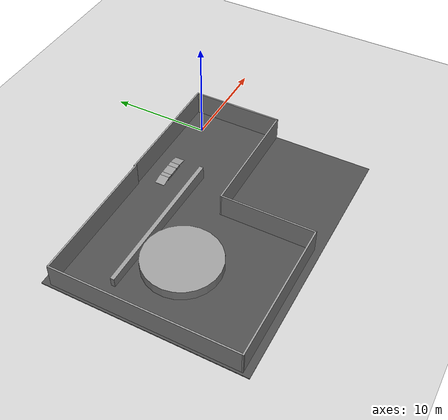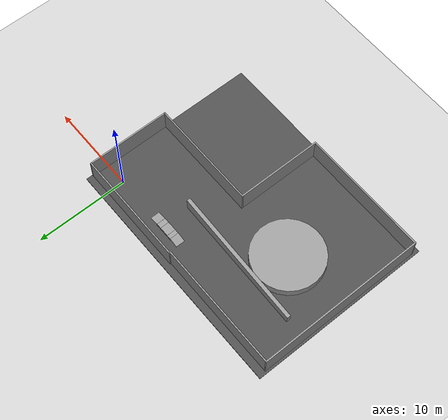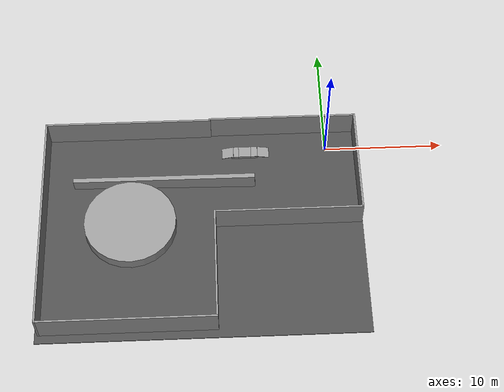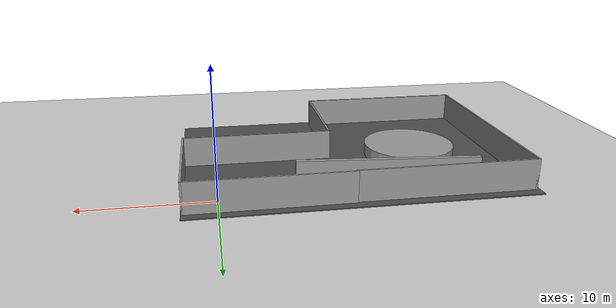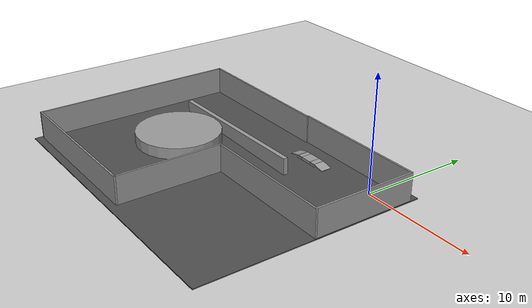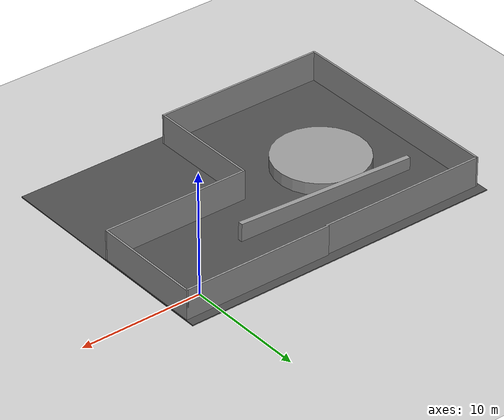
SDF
<sdf version="1.6">
 <world name="default">
  <light name="sun" type="directional">
   <pose>0 0 10 0 -0 0</pose>
   <diffuse>0.8 0.8 0.8 1</diffuse>
   <specular>0.2 0.2 0.2 1</specular>
   <attenuation>
    <range>1000</range>
    <constant>0.9</constant>
    <linear>0.01</linear>
    <quadratic>0.001</quadratic>
   </attenuation>
   <direction>-0.5 0.1 -0.9</direction>
  </light>
  <model name="ground_plane">
   <static>1</static>
   <link name="link">
    <collision name="collision">
     <geometry><plane><normal>0 0 1</normal><size>100 100</size></plane></geometry>
     <surface>
      <contact><collide_bitmask>65535</collide_bitmask></contact>
      <friction><ode><mu>100</mu><mu2>50</mu2></ode></friction>
     </surface>
    </collision>
    <visual name="visual">
     <cast_shadows>0</cast_shadows>
     <geometry><plane><normal>0 0 1</normal><size>100 100</size></plane></geometry>
     <material>
      <script><uri>file://media/materials/scripts/gazebo.material</uri><name>Gazebo/Grey</name></script>
     </material>
    </visual>
   </link>
  </model>
  <gravity>0 0 -9.8</gravity>
  <magnetic_field>6e-06 2.3e-05 -4.2e-05</magnetic_field>
  <atmosphere type="adiabatic"/>
  <physics name="default_physics" default="0" type="ode">
   <max_step_size>0.001</max_step_size>
   <real_time_factor>1</real_time_factor>
   <real_time_update_rate>1000</real_time_update_rate>
  </physics>
  <scene><ambient>0.4 0.4 0.4 1</ambient><background>0.7 0.7 0.7 1</background><shadows>1</shadows></scene>
  <audio><device>default</device></audio>
  <spherical_coordinates>
   <surface_model>EARTH_WGS84</surface_model>
   <latitude_deg>0</latitude_deg>
   <longitude_deg>0</longitude_deg>
   <elevation>0</elevation>
   <heading_deg>0</heading_deg>
  </spherical_coordinates>
  <model name="naoki_test">
   <pose>-10.6171 -7.42173 0 0 -0 0</pose>
   <link name="Wall_10">
    <collision name="Wall_10_Collision">
     <geometry><box><size>9.5 0.15 2.5</size></box></geometry>
     <pose>0 0 1.25 0 -0 0</pose>
    </collision>
    <visual name="Wall_10_Visual">
     <pose>0 0 1.25 0 -0 0</pose>
     <geometry><box><size>9.5 0.15 2.5</size></box></geometry>
     <material>
      <script><uri>file://media/materials/scripts/gazebo.material</uri><name>Gazebo/Grey</name></script>
      <ambient>1 1 1 1</ambient>
     </material>
     <meta><layer>0</layer></meta>
    </visual>
    <pose>1 -4.55 0 0 -0 -1.5708</pose>
   </link>
   <link name="Wall_11">
    <collision name="Wall_11_Collision">
     <geometry><box><size>14.25 0.15 2.5</size></box></geometry>
     <pose>0 0 1.25 0 -0 0</pose>
    </collision>
    <visual name="Wall_11_Visual">
     <pose>0 0 1.25 0 -0 0</pose>
     <geometry><box><size>14.25 0.15 2.5</size></box></geometry>
     <material>
      <script><uri>file://media/materials/scripts/gazebo.material</uri><name>Gazebo/Grey</name></script>
      <ambient>1 1 1 1</ambient>
     </material>
     <meta><layer>0</layer></meta>
    </visual>
    <pose>-6.05 -9.225 0 0 -0 3.14159</pose>
   </link>
   <link name="Wall_12">
    <collision name="Wall_12_Collision">
     <geometry><box><size>18.5 0.15 2.5</size></box></geometry>
     <pose>0 0 1.25 0 -0 0</pose>
    </collision>
    <visual name="Wall_12_Visual">
     <pose>0 0 1.25 0 -0 0</pose>
     <geometry><box><size>18.5 0.15 2.5</size></box></geometry>
     <material>
      <script><uri>file://media/materials/scripts/gazebo.material</uri><name>Gazebo/Grey</name></script>
      <ambient>1 1 1 1</ambient>
     </material>
     <meta><layer>0</layer></meta>
    </visual>
    <pose>-13.1 -0.05 0 0 -0 1.5708</pose>
   </link>
   <link name="Wall_13">
    <collision name="Wall_13_Collision">
     <geometry><box><size>14 0.15 2.5</size></box></geometry>
     <pose>0 0 1.25 0 -0 0</pose>
    </collision>
    <visual name="Wall_13_Visual">
     <pose>0 0 1.25 0 -0 0</pose>
     <geometry><box><size>14 0.15 2.5</size></box></geometry>
     <material>
      <script><uri>file://media/materials/scripts/gazebo.material</uri><name>Gazebo/Grey</name></script>
      <ambient>1 1 1 1</ambient>
     </material>
     <meta><layer>0</layer></meta>
    </visual>
    <pose>-6.175 9.125 0 0 -0 0</pose>
   </link>
   <link name="Wall_7">
    <collision name="Wall_7_Collision">
     <geometry><box><size>12.5 0.15 2.5</size></box></geometry>
     <pose>0 0 1.25 0 -0 0</pose>
    </collision>
    <visual name="Wall_7_Visual">
     <pose>0 0 1.25 0 -0 0</pose>
     <geometry><box><size>12.5 0.15 2.5</size></box></geometry>
     <material>
      <script><uri>file://media/materials/scripts/gazebo.material</uri><name>Gazebo/Grey</name></script>
      <ambient>1 1 1 1</ambient>
     </material>
     <meta><layer>0</layer></meta>
    </visual>
    <pose>6.925 9.225 0 0 -0 0</pose>
   </link>
   <link name="Wall_8">
    <collision name="Wall_8_Collision">
     <geometry><box><size>9.25 0.15 2.5</size></box></geometry>
     <pose>0 0 1.25 0 -0 0</pose>
    </collision>
    <visual name="Wall_8_Visual">
     <pose>0 0 1.25 0 -0 0</pose>
     <geometry><box><size>9.25 0.15 2.5</size></box></geometry>
     <material>
      <script><uri>file://media/materials/scripts/gazebo.material</uri><name>Gazebo/Grey</name></script>
      <ambient>1 1 1 1</ambient>
     </material>
     <meta><layer>0</layer></meta>
    </visual>
    <pose>13.1 4.675 0 0 -0 -1.5708</pose>
   </link>
   <link name="Wall_9">
    <collision name="Wall_9_Collision">
     <geometry><box><size>12.25 0.15 2.5</size></box></geometry>
     <pose>0 0 1.25 0 -0 0</pose>
    </collision>
    <visual name="Wall_9_Visual">
     <pose>0 0 1.25 0 -0 0</pose>
     <geometry><box><size>12.25 0.15 2.5</size></box></geometry>
     <material>
      <script><uri>file://media/materials/scripts/gazebo.material</uri><name>Gazebo/Grey</name></script>
      <ambient>1 1 1 1</ambient>
     </material>
     <meta><layer>0</layer></meta>
    </visual>
    <pose>7.05 0.125 0 0 -0 3.14159</pose>
   </link>
   <static>1</static>
  </model>
  <model name="unit_box">
   <pose>-7.7768 -0.198615 0.146125 -1e-06 -1e-06 0.00247</pose>
   <link name="link">
    <inertial>
     <mass>1</mass>
     <inertia>
      <ixx>0.166667</ixx>
      <ixy>0</ixy>
      <ixz>0</ixz>
      <iyy>0.166667</iyy>
      <iyz>0</iyz>
      <izz>0.166667</izz>
     </inertia>
    </inertial>
    <collision name="collision"><geometry><box><size>0.599521 1 0.19225</size></box></geometry></collision>
    <visual name="visual">
     <geometry><box><size>0.599521 1 0.19225</size></box></geometry>
     <material>
      <script><name>Gazebo/Grey</name><uri>file://media/materials/scripts/gazebo.material</uri></script>
     </material>
    </visual>
   </link>
  </model>
  <model name="unit_box_1">
   <pose>-8.41401 -0.197517 0.179476 -3e-05 -0.230082 0.002485</pose>
   <link name="link">
    <inertial>
     <mass>1</mass>
     <inertia>
      <ixx>0.166667</ixx>
      <ixy>0</ixy>
      <ixz>0</ixz>
      <iyy>0.166667</iyy>
      <iyz>0</iyz>
      <izz>0.166667</izz>
     </inertia>
    </inertial>
    <collision name="collision"><geometry><box><size>1 1 0.0317003</size></box></geometry></collision>
    <visual name="visual">
     <geometry><box><size>1 1 0.0317003</size></box></geometry>
     <material>
      <script><name>Gazebo/Grey</name><uri>file://media/materials/scripts/gazebo.material</uri></script>
     </material>
    </visual>
   </link>
  </model>
  <model name="unit_box_clone">
   <pose>-6.95613 -0.196658 0.171907 -3.2e-05 2.3e-05 0.002466</pose>
   <link name="link">
    <inertial>
     <mass>1</mass>
     <inertia>
      <ixx>0.166667</ixx>
      <ixy>0</ixy>
      <ixz>0</ixz>
      <iyy>0.166667</iyy>
      <iyz>0</iyz>
      <izz>0.166667</izz>
     </inertia>
    </inertial>
    <collision name="collision"><geometry><box><size>1.04182 1 0.2439</size></box></geometry></collision>
    <visual name="visual">
     <geometry><box><size>1.04182 1 0.2439</size></box></geometry>
     <material>
      <script><name>Gazebo/Grey</name><uri>file://media/materials/scripts/gazebo.material</uri></script>
     </material>
    </visual>
   </link>
  </model>
  <model name="unit_box_clone_0">
   <pose>-6.13547 -0.191618 0.14612 0 -1.8e-05 0.002452</pose>
   <link name="link">
    <inertial>
     <mass>1</mass>
     <inertia>
      <ixx>0.166667</ixx>
      <ixy>0</ixy>
      <ixz>0</ixz>
      <iyy>0.166667</iyy>
      <iyz>0</iyz>
      <izz>0.166667</izz>
     </inertia>
    </inertial>
    <collision name="collision"><geometry><box><size>0.599521 1 0.19225</size></box></geometry></collision>
    <visual name="visual">
     <geometry><box><size>0.599521 1 0.19225</size></box></geometry>
     <material>
      <script><name>Gazebo/Grey</name><uri>file://media/materials/scripts/gazebo.material</uri></script>
     </material>
    </visual>
   </link>
  </model>
  <model name="unit_box_1_clone">
   <pose>-5.38842 -0.187082 0.166343 7e-06 0.203034 0.002465</pose>
   <link name="link">
    <inertial>
     <mass>1</mass>
     <inertia>
      <ixx>0.166667</ixx>
      <ixy>0</ixy>
      <ixz>0</ixz>
      <iyy>0.166667</iyy>
      <iyz>0</iyz>
      <izz>0.166667</izz>
     </inertia>
    </inertial>
    <collision name="collision"><geometry><box><size>1 1 0.0317</size></box></geometry></collision>
    <visual name="visual">
     <geometry><box><size>1 1 0.0317</size></box></geometry>
     <material>
      <script><name>Gazebo/Grey</name><uri>file://media/materials/scripts/gazebo.material</uri></script>
     </material>
    </visual>
   </link>
  </model>
  <model name="unit_box_1_clone_0">
   <pose>-6.15829 -0.192103 0.2657 2e-06 -1.5e-05 0.00246</pose>
   <link name="link">
    <inertial>
     <mass>1</mass>
     <inertia>
      <ixx>0.166667</ixx>
      <ixy>0</ixy>
      <ixz>0</ixz>
      <iyy>0.166667</iyy>
      <iyz>0</iyz>
      <izz>0.166667</izz>
     </inertia>
    </inertial>
    <collision name="collision"><geometry><box><size>0.553899 1 0.0469112</size></box></geometry></collision>
    <visual name="visual">
     <geometry><box><size>0.553899 1 0.0469112</size></box></geometry>
     <material>
      <script><name>Gazebo/Grey</name><uri>file://media/materials/scripts/gazebo.material</uri></script>
     </material>
    </visual>
   </link>
  </model>
  <model name="unit_box_1_clone_0_clone">
   <pose>-7.70032 -0.194154 0.265706 0 -0 0.002474</pose>
   <link name="link">
    <inertial>
     <mass>1</mass>
     <inertia>
      <ixx>0.166667</ixx>
      <ixy>0</ixy>
      <ixz>0</ixz>
      <iyy>0.166667</iyy>
      <iyz>0</iyz>
      <izz>0.166667</izz>
     </inertia>
    </inertial>
    <collision name="collision"><geometry><box><size>0.446506 1 0.046911</size></box></geometry></collision>
    <visual name="visual">
     <geometry><box><size>0.446506 1 0.046911</size></box></geometry>
     <material>
      <script><name>Gazebo/Grey</name><uri>file://media/materials/scripts/gazebo.material</uri></script>
     </material>
    </visual>
   </link>
  </model>
  <model name="asphalt_plane">
   <static>1</static>
   <link name="link">
    <collision name="collision"><geometry><box><size>26.6366 20 0.1</size></box></geometry></collision>
    <visual name="visual">
     <cast_shadows>0</cast_shadows>
     <geometry><box><size>26.6366 20 0.1</size></box></geometry>
     <material>
      <script>
       <uri>model://asphalt_plane/materials/scripts</uri>
       <uri>model://asphalt_plane/materials/textures</uri>
       <name>vrc/asphalt</name>
      </script>
     </material>
    </visual>
   </link>
   <pose>-10.7069 -7.40195 0 0 -0 0</pose>
  </model>
  <model name="unit_cylinder">
   <pose>-16.6132 -7.15069 0.550101 -2.1e-05 -1e-05 -2.56088</pose>
   <link name="link">
    <inertial>
     <mass>1</mass>
     <inertia><ixx>0.145833</ixx><ixy>0</ixy><ixz>0</ixz><iyy>0.145833</iyy><iyz>0</iyz><izz>0.125</izz></inertia>
    </inertial>
    <collision name="collision">
     <geometry><cylinder><radius>3.79127</radius><length>1</length></cylinder></geometry>
    </collision>
    <visual name="visual">
     <geometry><cylinder><radius>3.79127</radius><length>1</length></cylinder></geometry>
     <material>
      <script><name>Gazebo/Grey</name><uri>file://media/materials/scripts/gazebo.material</uri></script>
     </material>
    </visual>
   </link>
  </model>
  <model name="unit_box_clone_clone">
   <pose>-13.8058 -3.21335 0.552996 0.00061 -0.029333 -0.020867</pose>
   <link name="link">
    <inertial>
     <mass>1</mass>
     <inertia>
      <ixx>0.166667</ixx>
      <ixy>0</ixy>
      <ixz>0</ixz>
      <iyy>0.166667</iyy>
      <iyz>0</iyz>
      <izz>0.166667</izz>
     </inertia>
    </inertial>
    <collision name="collision"><geometry><box><size>15.2301 0.405585 1.45034</size></box></geometry></collision>
    <visual name="visual">
     <geometry><box><size>15.2301 0.405585 1.45034</size></box></geometry>
     <material>
      <script><name>Gazebo/Grey</name><uri>file://media/materials/scripts/gazebo.material</uri></script>
     </material>
    </visual>
   </link>
  </model>
 </world>
</sdf>
